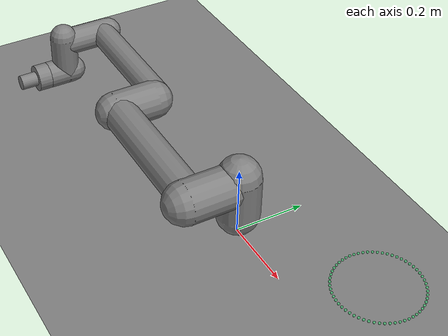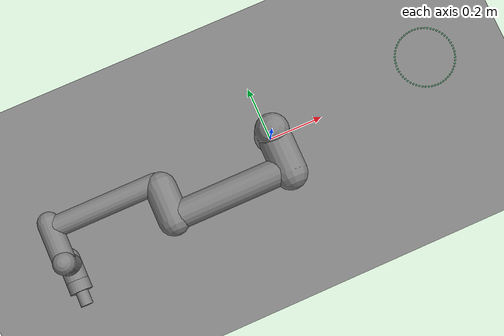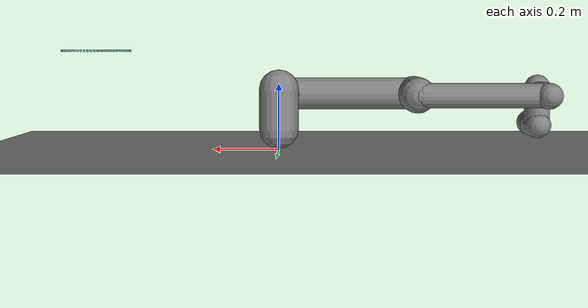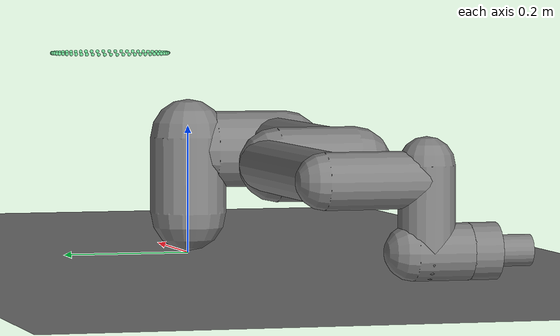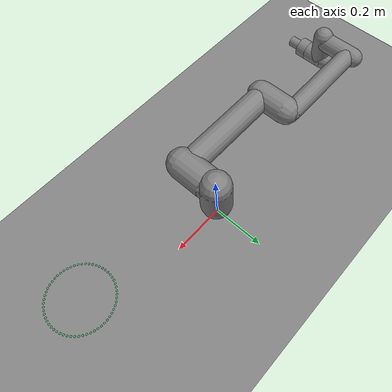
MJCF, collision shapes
<mujoco model="ur5e">
  <compiler angle="radian" meshdir="assets" autolimits="true" />

  <option integrator="implicitfast" timestep="0.005" />

  <default>
    <default class="ur5e">
      <material specular="0.5" shininess="0.25" />
      <joint axis="0 1 0" range="-6.28319 6.28319" armature="0.1" />
      <general gaintype="fixed" biastype="affine" ctrlrange="-6.2831 6.2831" gainprm="2000" biasprm="0 -2000 -400" forcerange="-150 150" />
      <default class="size3">
        <default class="size3_limited">
          <joint range="-3.1415 3.1415" />
          <general ctrlrange="-3.1415 3.1415" />
        </default>
      </default>
      <default class="size1">
        <general gainprm="500" biasprm="0 -500 -100" forcerange="-28 28" />
      </default>
      <default class="visual">
        <geom type="mesh" contype="0" conaffinity="0" group="2" />
      </default>
      <default class="collision">
        <geom type="capsule" group="3" />
        <default class="eef_collision">
          <geom type="cylinder" />
        </default>
      </default>
      <site size="0.001" rgba="0.5 0.5 0.5 0.3" group="4" />
    </default>
  </default>

  <asset>
    <material class="ur5e" name="black" rgba="0.033 0.033 0.033 1" />
    <material class="ur5e" name="jointgray" rgba="0.278 0.278 0.278 1" />
    <material class="ur5e" name="linkgray" rgba="0.82 0.82 0.82 1" />
    <material class="ur5e" name="urblue" rgba="0.49 0.678 0.8 1" />

    <mesh file="base_0.obj" />
    <mesh file="base_1.obj" />
    <mesh file="shoulder_0.obj" />
    <mesh file="shoulder_1.obj" />
    <mesh file="shoulder_2.obj" />
    <mesh file="upperarm_0.obj" />
    <mesh file="upperarm_1.obj" />
    <mesh file="upperarm_2.obj" />
    <mesh file="upperarm_3.obj" />
    <mesh file="forearm_0.obj" />
    <mesh file="forearm_1.obj" />
    <mesh file="forearm_2.obj" />
    <mesh file="forearm_3.obj" />
    <mesh file="wrist1_0.obj" />
    <mesh file="wrist1_1.obj" />
    <mesh file="wrist1_2.obj" />
    <mesh file="wrist2_0.obj" />
    <mesh file="wrist2_1.obj" />
    <mesh file="wrist2_2.obj" />
    <mesh file="wrist3.obj" />
  </asset>

  <worldbody>
    <light name="spotlight" mode="targetbodycom" target="wrist_2_link" pos="0 -1 2" />
    <body name="base" quat="0 0 0 -1" childclass="ur5e">
      <inertial mass="4.0" pos="0 0 0" diaginertia="0.00443333156 0.00443333156 0.0072" />
      <geom mesh="base_0" material="black" class="visual" />
      <geom mesh="base_1" material="jointgray" class="visual" />
      <body name="shoulder_link" pos="0 0 0.163">
        <inertial mass="3.7" pos="0 0 0" diaginertia="0.0102675 0.0102675 0.00666" />
        <joint name="shoulder_pan_joint" class="size3" axis="0 0 1" />
        <geom mesh="shoulder_0" material="urblue" class="visual" />
        <geom mesh="shoulder_1" material="black" class="visual" />
        <geom mesh="shoulder_2" material="jointgray" class="visual" />
        <geom class="collision" size="0.06 0.06" pos="0 0 -0.04" />
        <body name="upper_arm_link" pos="0 0.138 0" quat="1 0 1 0">
          <inertial mass="8.393" pos="0 0 0.2125" diaginertia="0.133886 0.133886 0.0151074" />
          <joint name="shoulder_lift_joint" class="size3" />
          <geom mesh="upperarm_0" material="linkgray" class="visual" />
          <geom mesh="upperarm_1" material="black" class="visual" />
          <geom mesh="upperarm_2" material="jointgray" class="visual" />
          <geom mesh="upperarm_3" material="urblue" class="visual" />
          <geom class="collision" pos="0 -0.04 0" quat="1 1 0 0" size="0.06 0.06" />
          <geom class="collision" size="0.05 0.2" pos="0 0 0.2" />
          <body name="forearm_link" pos="0 -0.131 0.425">
            <inertial mass="2.275" pos="0 0 0.196" diaginertia="0.0311796 0.0311796 0.004095" />
            <joint name="elbow_joint" class="size3_limited" />
            <geom mesh="forearm_0" material="urblue" class="visual" />
            <geom mesh="forearm_1" material="linkgray" class="visual" />
            <geom mesh="forearm_2" material="black" class="visual" />
            <geom mesh="forearm_3" material="jointgray" class="visual" />
            <geom class="collision" pos="0 0.08 0" quat="1 1 0 0" size="0.055 0.06" />
            <geom class="collision" size="0.038 0.19" pos="0 0 0.2" />
            <body name="wrist_1_link" pos="0 0 0.392" quat="1 0 1 0">
              <inertial mass="1.219" pos="0 0.127 0" diaginertia="0.0025599 0.0025599 0.0021942" />
              <joint name="wrist_1_joint" class="size1" />
              <geom mesh="wrist1_0" material="black" class="visual" />
              <geom mesh="wrist1_1" material="urblue" class="visual" />
              <geom mesh="wrist1_2" material="jointgray" class="visual" />
              <geom class="collision" pos="0 0.05 0" quat="1 1 0 0" size="0.04 0.07" />
              <body name="wrist_2_link" pos="0 0.127 0">
                <inertial mass="1.219" pos="0 0 0.1" diaginertia="0.0025599 0.0025599 0.0021942" />
                <joint name="wrist_2_joint" axis="0 0 1" class="size1" />
                <geom mesh="wrist2_0" material="black" class="visual" />
                <geom mesh="wrist2_1" material="urblue" class="visual" />
                <geom mesh="wrist2_2" material="jointgray" class="visual" />
                <geom class="collision" size="0.04 0.06" pos="0 0 0.04" />
                <geom class="collision" pos="0 0.02 0.1" quat="1 1 0 0" size="0.04 0.04" />
                <body name="wrist_3_link" pos="0 0 0.1">
                  <inertial mass="0.1889" pos="0 0.0771683 0" quat="1 0 0 1" diaginertia="0.000132134 9.90863e-05 9.90863e-05" />
                  <joint name="wrist_3_joint" class="size1" />
                  <geom material="linkgray" mesh="wrist3" class="visual" />
                  <geom class="eef_collision" pos="0 0.08 0" quat="1 1 0 0" size="0.04 0.02" />
                  <site name="attachment_site" pos="0 0.1 0" quat="-1 1 0 0" />
                <body name="suction_cup" pos="0 0.1 0" quat="-1 1 0 0"><geom type="cylinder" pos="0 0 0.025" size="0.022 0.025" mass="0.05" contype="0" conaffinity="0" /><site name="tcp" pos="0 0 0.05" size="0.004" /></body></body>
              </body>
            </body>
          </body>
        </body>
      </body>
    </body>
  <geom type="plane" size="2 2 0.1" /><light pos="1 1 3" /><site name="path_marker_0" type="sphere" pos="0.65 0.0 0.3" size="0.003" rgba="0.2 0.85 0.45 0.6" /><site name="path_marker_1" type="sphere" pos="0.6494521895368274 0.010452846326765346 0.3" size="0.003" rgba="0.2 0.85 0.45 0.6" /><site name="path_marker_2" type="sphere" pos="0.6478147600733806 0.02079116908177593 0.3" size="0.003" rgba="0.2 0.85 0.45 0.6" /><site name="path_marker_3" type="sphere" pos="0.6451056516295154 0.03090169943749474 0.3" size="0.003" rgba="0.2 0.85 0.45 0.6" /><site name="path_marker_4" type="sphere" pos="0.6413545457642601 0.040673664307580015 0.3" size="0.003" rgba="0.2 0.85 0.45 0.6" /><site name="path_marker_5" type="sphere" pos="0.6366025403784439 0.049999999999999996 0.3" size="0.003" rgba="0.2 0.85 0.45 0.6" /><site name="path_marker_6" type="sphere" pos="0.6309016994374947 0.058778525229247314 0.3" size="0.003" rgba="0.2 0.85 0.45 0.6" /><site name="path_marker_7" type="sphere" pos="0.6243144825477395 0.06691306063588583 0.3" size="0.003" rgba="0.2 0.85 0.45 0.6" /><site name="path_marker_8" type="sphere" pos="0.6169130606358859 0.07431448254773941 0.3" size="0.003" rgba="0.2 0.85 0.45 0.6" /><site name="path_marker_9" type="sphere" pos="0.6087785252292474 0.08090169943749476 0.3" size="0.003" rgba="0.2 0.85 0.45 0.6" /><site name="path_marker_10" type="sphere" pos="0.6000000000000001 0.08660254037844387 0.3" size="0.003" rgba="0.2 0.85 0.45 0.6" /><site name="path_marker_11" type="sphere" pos="0.5906736643075801 0.0913545457642601 0.3" size="0.003" rgba="0.2 0.85 0.45 0.6" /><site name="path_marker_12" type="sphere" pos="0.5809016994374948 0.09510565162951536 0.3" size="0.003" rgba="0.2 0.85 0.45 0.6" /><site name="path_marker_13" type="sphere" pos="0.570791169081776 0.09781476007338058 0.3" size="0.003" rgba="0.2 0.85 0.45 0.6" /><site name="path_marker_14" type="sphere" pos="0.5604528463267654 0.09945218953682733 0.3" size="0.003" rgba="0.2 0.85 0.45 0.6" /><site name="path_marker_15" type="sphere" pos="0.55 0.1 0.3" size="0.003" rgba="0.2 0.85 0.45 0.6" /><site name="path_marker_16" type="sphere" pos="0.5395471536732347 0.09945218953682734 0.3" size="0.003" rgba="0.2 0.85 0.45 0.6" /><site name="path_marker_17" type="sphere" pos="0.5292088309182241 0.09781476007338058 0.3" size="0.003" rgba="0.2 0.85 0.45 0.6" /><site name="path_marker_18" type="sphere" pos="0.5190983005625053 0.09510565162951537 0.3" size="0.003" rgba="0.2 0.85 0.45 0.6" /><site name="path_marker_19" type="sphere" pos="0.50932633569242 0.09135454576426011 0.3" size="0.003" rgba="0.2 0.85 0.45 0.6" /><site name="path_marker_20" type="sphere" pos="0.5000000000000001 0.08660254037844388 0.3" size="0.003" rgba="0.2 0.85 0.45 0.6" /><site name="path_marker_21" type="sphere" pos="0.49122147477075273 0.08090169943749476 0.3" size="0.003" rgba="0.2 0.85 0.45 0.6" /><site name="path_marker_22" type="sphere" pos="0.48308693936411423 0.07431448254773945 0.3" size="0.003" rgba="0.2 0.85 0.45 0.6" /><site name="path_marker_23" type="sphere" pos="0.4756855174522606 0.06691306063588584 0.3" size="0.003" rgba="0.2 0.85 0.45 0.6" /><site name="path_marker_24" type="sphere" pos="0.4690983005625053 0.05877852522924733 0.3" size="0.003" rgba="0.2 0.85 0.45 0.6" /><site name="path_marker_25" type="sphere" pos="0.46339745962155615 0.049999999999999996 0.3" size="0.003" rgba="0.2 0.85 0.45 0.6" /><site name="path_marker_26" type="sphere" pos="0.45864545423573994 0.04067366430758001 0.3" size="0.003" rgba="0.2 0.85 0.45 0.6" /><site name="path_marker_27" type="sphere" pos="0.4548943483704847 0.030901699437494753 0.3" size="0.003" rgba="0.2 0.85 0.45 0.6" /><site name="path_marker_28" type="sphere" pos="0.45218523992661946 0.02079116908177593 0.3" size="0.003" rgba="0.2 0.85 0.45 0.6" /><site name="path_marker_29" type="sphere" pos="0.4505478104631727 0.01045284632676533 0.3" size="0.003" rgba="0.2 0.85 0.45 0.6" /><site name="path_marker_30" type="sphere" pos="0.45000000000000007 5.665538897647979e-17 0.3" size="0.003" rgba="0.2 0.85 0.45 0.6" /><site name="path_marker_31" type="sphere" pos="0.4505478104631727 -0.010452846326765306 0.3" size="0.003" rgba="0.2 0.85 0.45 0.6" /><site name="path_marker_32" type="sphere" pos="0.45218523992661946 -0.020791169081775907 0.3" size="0.003" rgba="0.2 0.85 0.45 0.6" /><site name="path_marker_33" type="sphere" pos="0.4548943483704847 -0.03090169943749473 0.3" size="0.003" rgba="0.2 0.85 0.45 0.6" /><site name="path_marker_34" type="sphere" pos="0.45864545423573994 -0.04067366430758002 0.3" size="0.003" rgba="0.2 0.85 0.45 0.6" /><site name="path_marker_35" type="sphere" pos="0.46339745962155615 -0.049999999999999975 0.3" size="0.003" rgba="0.2 0.85 0.45 0.6" /><site name="path_marker_36" type="sphere" pos="0.4690983005625053 -0.05877852522924731 0.3" size="0.003" rgba="0.2 0.85 0.45 0.6" /><site name="path_marker_37" type="sphere" pos="0.4756855174522606 -0.06691306063588583 0.3" size="0.003" rgba="0.2 0.85 0.45 0.6" /><site name="path_marker_38" type="sphere" pos="0.4830869393641142 -0.07431448254773941 0.3" size="0.003" rgba="0.2 0.85 0.45 0.6" /><site name="path_marker_39" type="sphere" pos="0.49122147477075273 -0.08090169943749474 0.3" size="0.003" rgba="0.2 0.85 0.45 0.6" /><site name="path_marker_40" type="sphere" pos="0.5 -0.08660254037844385 0.3" size="0.003" rgba="0.2 0.85 0.45 0.6" /><site name="path_marker_41" type="sphere" pos="0.5093263356924199 -0.09135454576426005 0.3" size="0.003" rgba="0.2 0.85 0.45 0.6" /><site name="path_marker_42" type="sphere" pos="0.5190983005625053 -0.09510565162951536 0.3" size="0.003" rgba="0.2 0.85 0.45 0.6" /><site name="path_marker_43" type="sphere" pos="0.529208830918224 -0.09781476007338057 0.3" size="0.003" rgba="0.2 0.85 0.45 0.6" /><site name="path_marker_44" type="sphere" pos="0.5395471536732346 -0.09945218953682733 0.3" size="0.003" rgba="0.2 0.85 0.45 0.6" /><site name="path_marker_45" type="sphere" pos="0.55 -0.1 0.3" size="0.003" rgba="0.2 0.85 0.45 0.6" /><site name="path_marker_46" type="sphere" pos="0.5604528463267654 -0.09945218953682734 0.3" size="0.003" rgba="0.2 0.85 0.45 0.6" /><site name="path_marker_47" type="sphere" pos="0.570791169081776 -0.09781476007338057 0.3" size="0.003" rgba="0.2 0.85 0.45 0.6" /><site name="path_marker_48" type="sphere" pos="0.5809016994374948 -0.09510565162951537 0.3" size="0.003" rgba="0.2 0.85 0.45 0.6" /><site name="path_marker_49" type="sphere" pos="0.5906736643075801 -0.09135454576426011 0.3" size="0.003" rgba="0.2 0.85 0.45 0.6" /><site name="path_marker_50" type="sphere" pos="0.6000000000000001 -0.08660254037844387 0.3" size="0.003" rgba="0.2 0.85 0.45 0.6" /><site name="path_marker_51" type="sphere" pos="0.6087785252292474 -0.08090169943749476 0.3" size="0.003" rgba="0.2 0.85 0.45 0.6" /><site name="path_marker_52" type="sphere" pos="0.6169130606358859 -0.07431448254773941 0.3" size="0.003" rgba="0.2 0.85 0.45 0.6" /><site name="path_marker_53" type="sphere" pos="0.6243144825477395 -0.06691306063588581 0.3" size="0.003" rgba="0.2 0.85 0.45 0.6" /><site name="path_marker_54" type="sphere" pos="0.6309016994374947 -0.05877852522924734 0.3" size="0.003" rgba="0.2 0.85 0.45 0.6" /><site name="path_marker_55" type="sphere" pos="0.6366025403784439 -0.04999999999999997 0.3" size="0.003" rgba="0.2 0.85 0.45 0.6" /><site name="path_marker_56" type="sphere" pos="0.6413545457642602 -0.040673664307580015 0.3" size="0.003" rgba="0.2 0.85 0.45 0.6" /><site name="path_marker_57" type="sphere" pos="0.6451056516295154 -0.030901699437494767 0.3" size="0.003" rgba="0.2 0.85 0.45 0.6" /><site name="path_marker_58" type="sphere" pos="0.6478147600733806 -0.0207911690817759 0.3" size="0.003" rgba="0.2 0.85 0.45 0.6" /><site name="path_marker_59" type="sphere" pos="0.6494521895368274 -0.010452846326765342 0.3" size="0.003" rgba="0.2 0.85 0.45 0.6" /></worldbody>

  <actuator><motor name="shoulder_pan_joint_motor" joint="shoulder_pan_joint" ctrllimited="true" ctrlrange="-150.0 150.0" /><motor name="shoulder_lift_joint_motor" joint="shoulder_lift_joint" ctrllimited="true" ctrlrange="-150.0 150.0" /><motor name="elbow_joint_motor" joint="elbow_joint" ctrllimited="true" ctrlrange="-150.0 150.0" /><motor name="wrist_1_joint_motor" joint="wrist_1_joint" ctrllimited="true" ctrlrange="-28.0 28.0" /><motor name="wrist_2_joint_motor" joint="wrist_2_joint" ctrllimited="true" ctrlrange="-28.0 28.0" /><motor name="wrist_3_joint_motor" joint="wrist_3_joint" ctrllimited="true" ctrlrange="-28.0 28.0" /></actuator><visual><global offwidth="960" offheight="720" /></visual></mujoco>
